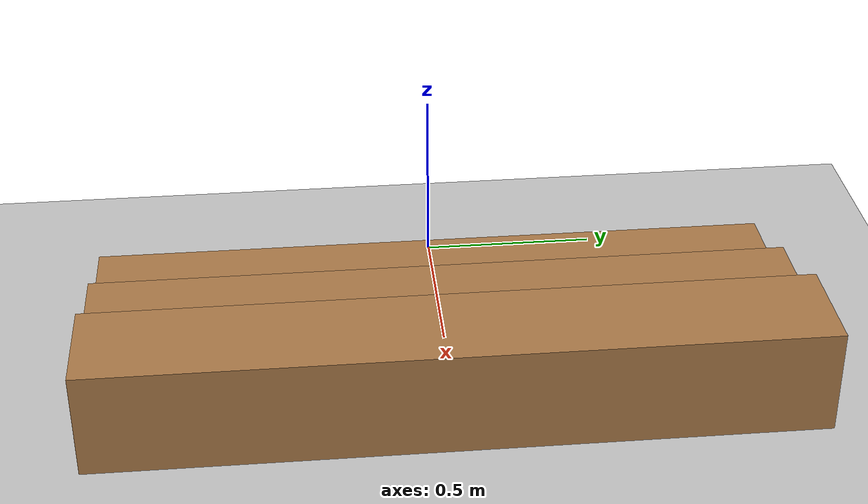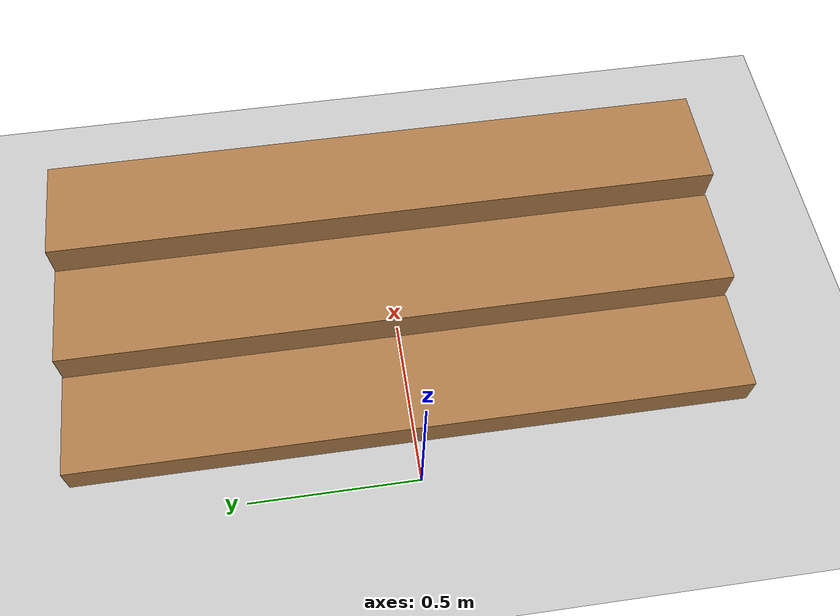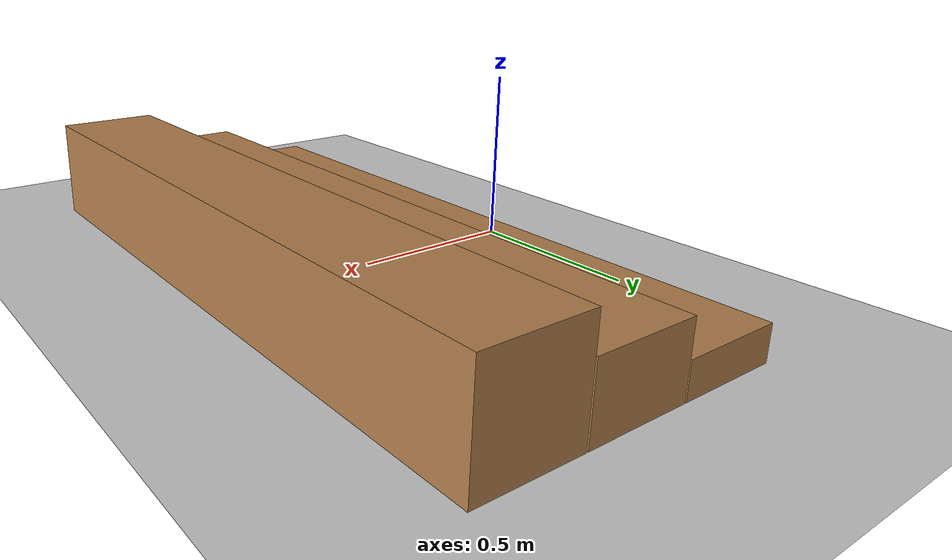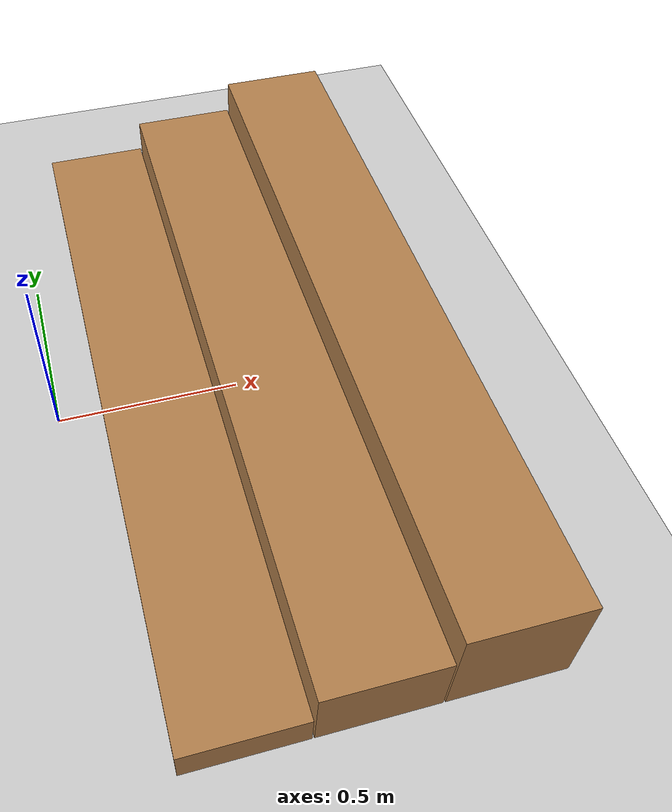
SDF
<?xml version="1.0" ?>
<sdf version="1.4">
    <world name="default">
        <physics type="ode">
            <gravity>0 0 -9.81</gravity>
            <ode>
                <solver>
                    <type>quick</type>
                    <iters>50</iters>
                    <sor>1.4</sor>
                </solver>
                <constraints>
                    <cfm>0.0</cfm>
                    <erp>0.2</erp>
                    <contact_max_correcting_vel>100.0</contact_max_correcting_vel>
                    <contact_surface_layer>0.0</contact_surface_layer>
                </constraints>
            </ode>
            <real_time_update_rate>1000</real_time_update_rate>
            <max_step_size>0.001</max_step_size>
        </physics>
        <!-- A global light source -->
        <include>
            <uri>model://sun</uri>
        </include>
        <!-- A ground plane -->
        <include>
            <uri>model://ground_plane</uri>
        </include>
        <model name="step_1">
            <pose>0.27 0.000000 0.0500 0.000000 0.000000 0.000000</pose>
            <static>true</static>
            <link name="step_1_body">
                <inertial>
                    <mass>1.0</mass>
                    <inertia>
                        <ixx>1.0</ixx>
                        <ixy>0.0</ixy>
                        <ixz>0.0</ixz>
                        <iyy>1.0</iyy>
                        <iyz>0.0</iyz>
                        <izz>1.0</izz>
                    </inertia>
                </inertial>
                <collision name="collision">
                    <geometry>
                        <box>
                            <size>0.3 2.0 0.100</size>
                        </box>
                    </geometry>
                    <surface>
                        <friction>
                            <ode>
                                <mu>100</mu>
                                <mu2>100</mu2>
                            </ode>
                        </friction>
                    </surface>
                </collision>
                <visual name="visual">
                    <geometry>
                        <box>
                            <size>0.3 2.0 0.100</size>
                        </box>
                    </geometry>
                    <material>
                        <script>
                            <uri>file://media/materials/scripts/gazebo.material</uri>
                            <name>Gazebo/Wood</name>
                        </script>
                    </material>
                </visual>
            </link>
        </model>
        <model name="step_2">
            <pose>0.575 0.00000 0.100 0.000000 0.000000 0.000000</pose>
            <static>true</static>
            <link name="step_2_body">
                <inertial>
                    <mass>1.0</mass>
                    <inertia>
                        <ixx>1.0</ixx>
                        <ixy>0.0</ixy>
                        <ixz>0.0</ixz>
                        <iyy>1.0</iyy>
                        <iyz>0.0</iyz>
                        <izz>1.0</izz>
                    </inertia>
                </inertial>
                <collision name="collision">
                    <geometry>
                        <box>
                            <size>0.31 2.0 0.200</size>
                        </box>
                    </geometry>
                    <surface>
                        <friction>
                            <ode>
                                <mu>100</mu>
                                <mu2>100</mu2>
                            </ode>
                        </friction>
                    </surface>
                </collision>
                <visual name="visual">
                    <geometry>
                        <box>
                            <size>0.3 2.0 0.200</size>
                        </box>
                    </geometry>
                    <material>
                        <script>
                            <uri>file://media/materials/scripts/gazebo.material</uri>
                            <name>Gazebo/Wood</name>
                        </script>
                    </material>
                </visual>
            </link>
        </model>
        <model name="step_3">
            <pose>0.88 0.000000 0.15 0.000000 0.000000 0.000000</pose>
            <static>true</static>
            <link name="step_3_body">
                <inertial>
                    <mass>1.0</mass>
                    <inertia>
                        <ixx>1.0</ixx>
                        <ixy>0.0</ixy>
                        <ixz>0.0</ixz>
                        <iyy>1.0</iyy>
                        <iyz>0.0</iyz>
                        <izz>1.0</izz>
                    </inertia>
                </inertial>
                <collision name="collision">
                    <geometry>
                        <box>
                            <size>0.3 2.0 0.30</size>
                        </box>
                    </geometry>
                    <surface>
                        <friction>
                            <ode>
                                <mu>100</mu>
                                <mu2>100</mu2>
                            </ode>
                        </friction>
                    </surface>
                </collision>
                <visual name="visual">
                    <geometry>
                        <box>
                            <size>0.3 2.0 0.30</size>
                        </box>
                    </geometry>
                    <material>
                        <script>
                            <uri>file://media/materials/scripts/gazebo.material</uri>
                            <name>Gazebo/Wood</name>
                        </script>
                    </material>
                </visual>
            </link>
        </model>
    </world>
</sdf>
